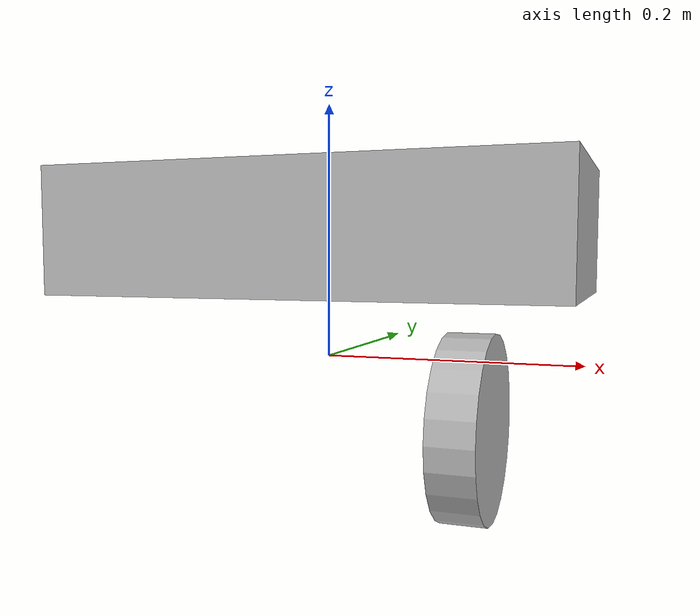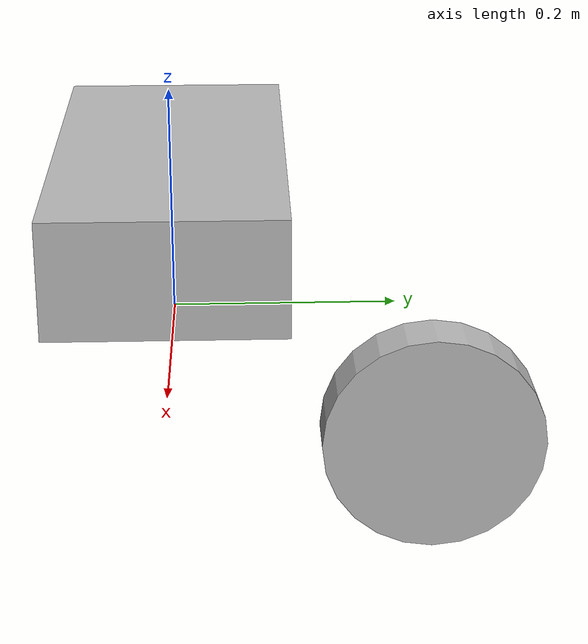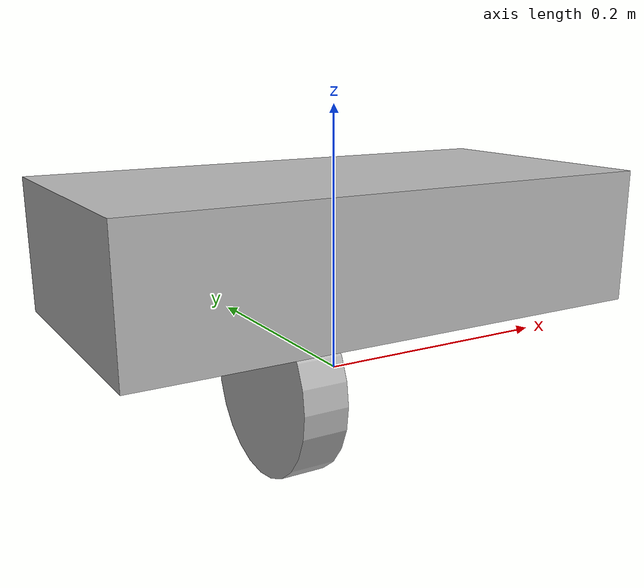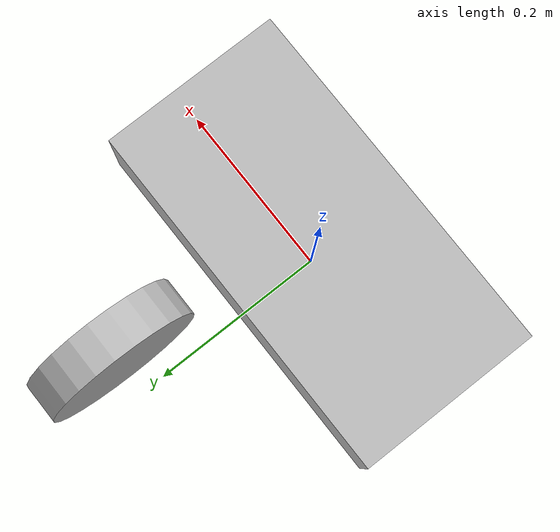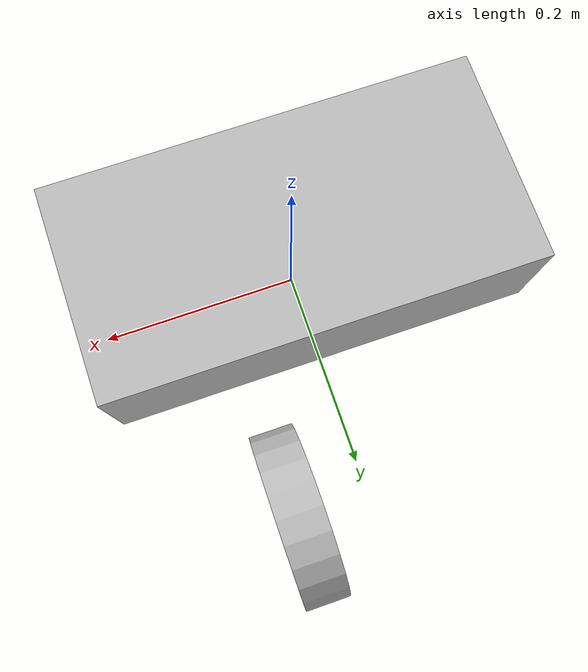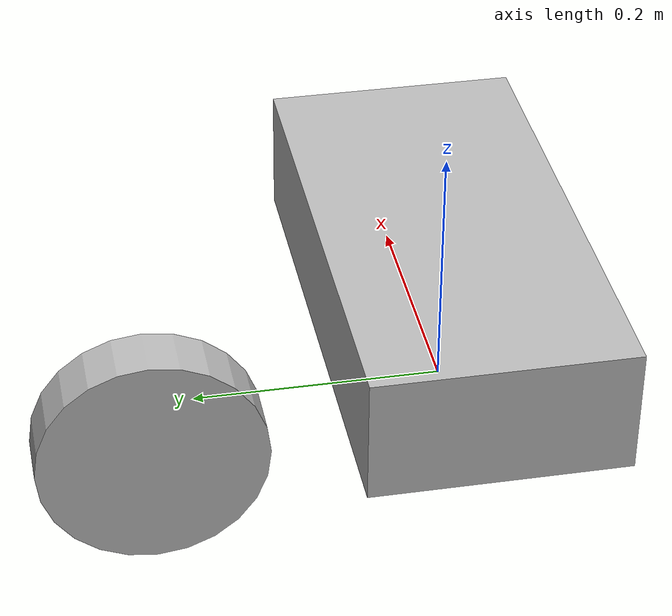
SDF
<sdf version='1.6'>
  <model name='rrbot'>
    <link name='base_link'>
      <pose frame=''>0 0 0 0 -0 0</pose>
      <inertial>
        <pose frame=''>0 0 0.1 0 -0 0</pose>
        <mass>1e-05</mass>
        <inertia>
          <ixx>1e-06</ixx>
          <ixy>0</ixy>
          <ixz>0</ixz>
          <iyy>1e-06</iyy>
          <iyz>0</iyz>
          <izz>1e-06</izz>
        </inertia>
      </inertial>
      <collision name='base_link_fixed_joint_lump__collision_collision'>
        <pose frame=''>0 0 0.1 0 -0 0</pose>
        <geometry>
          <box>
            <size>0.4 0.2 0.1</size>
          </box>
        </geometry>
      </collision>
      <visual name='base_link_fixed_joint_lump__visual_visual'>
        <pose frame=''>0 0 0.1 0 -0 0</pose>
        <geometry>
          <box>
            <size>0.4 0.2 0.1</size>
          </box>
        </geometry>
      </visual>
    </link>
    <link name='left_wheel'>
      <pose frame=''>0.2 0.13 0.1 0 1.5707 1.5707</pose>
      <inertial>
        <pose frame=''>0.2 0.13 0.1 0 -0 0</pose>
        <mass>1e-05</mass>
        <inertia>
          <ixx>1e-06</ixx>
          <ixy>0</ixy>
          <ixz>0</ixz>
          <iyy>1e-06</iyy>
          <iyz>0</iyz>
          <izz>1e-06</izz>
        </inertia>
      </inertial>
      <collision name='left_wheel_fixed_joint_lump__collision_collision'>
        <pose frame=''>0.2 0.13 0.1 -3.14159 1.57079 -1.57089</pose>
        <geometry>
          <cylinder>
            <length>0.05</length>
            <radius>0.1</radius>
          </cylinder>
        </geometry>
      </collision>
      <visual name='left_wheel_fixed_joint_lump__visual_visual'>
        <pose frame=''>0.2 0.13 0.1 -3.14159 1.57079 -1.57089</pose>
        <geometry>
          <cylinder>
            <length>0.05</length>
            <radius>0.1</radius>
          </cylinder>
        </geometry>
      </visual>
    </link>
    <joint name='joint1' type='revolute'>
      <child>left_wheel</child>
      <parent>base_link</parent>
      <axis>
        <xyz>-1 9.6e-05 0</xyz>
        <limit>
          <lower>-100</lower>
          <upper>100</upper>
          <effort>30</effort>
          <velocity>1</velocity>
        </limit>
        <dynamics>
          <spring_reference>0</spring_reference>
          <spring_stiffness>0</spring_stiffness>
        </dynamics>
        <use_parent_model_frame>1</use_parent_model_frame>
      </axis>
    </joint>
  </model>
</sdf>
